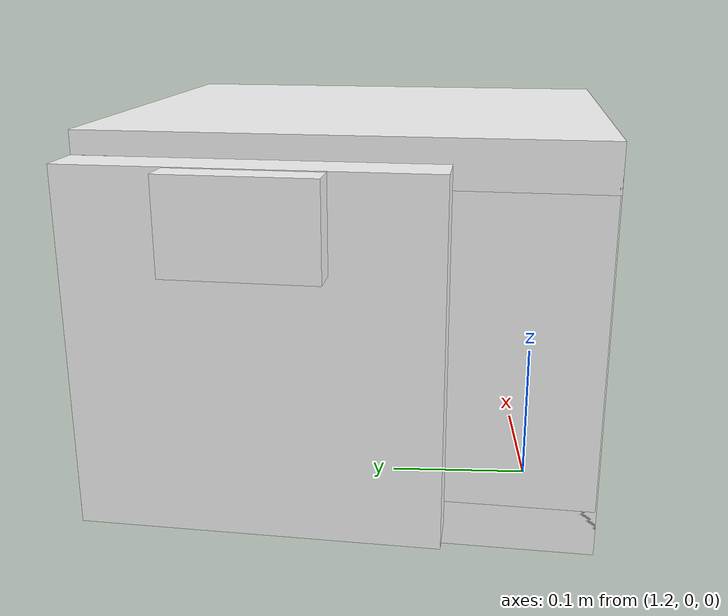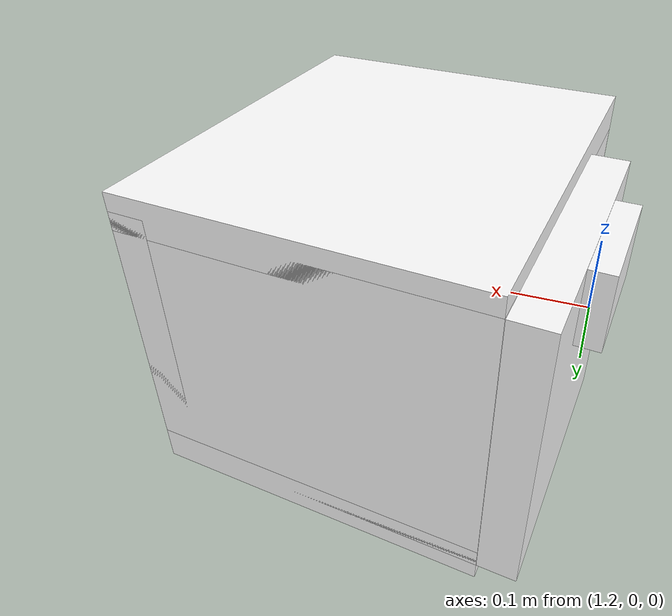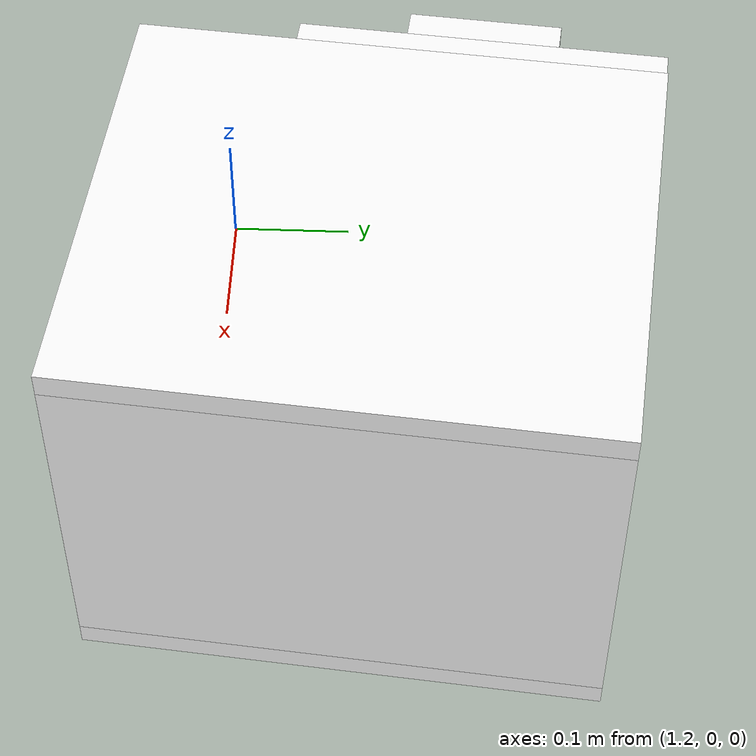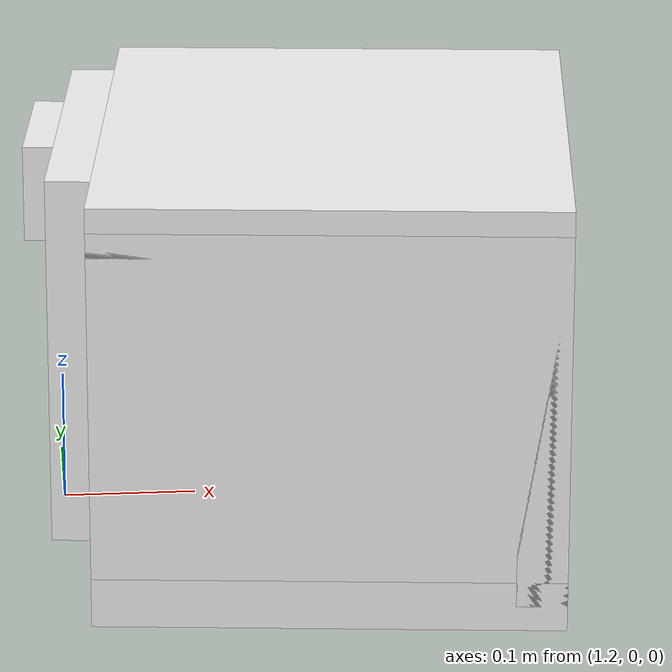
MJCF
<mujoco model="cabinet">
    <compiler angle="radian" eulerseq='zxy' />
    <option gravity = "0 0 0" />
    <option>
        <flag contact = "disable"/>
    </option>
    <statistic	extent="1.0" center="0.0 0.0 0.0"/>
    <visual>
        <map fogstart="3" fogend="5" force="0.1" znear=" 0.100000 " zfar=" 12.000000 "/>
    </visual>
    <size njmax="500" nconmax="100" />
    <actuator>
        <velocity joint="bottom_left_hinge" name="viva_revolution" kv='10'></velocity>
    </actuator>
    <asset>
        <texture builtin="flat" name="tabletex" height="32" width="32" rgb1="1 1 1" type="cube"></texture>
        <texture builtin="flat" name="objtex" height="32" width="32" rgb1="1 1 1" type="cube"></texture>
        <texture builtin="flat" name="handletex" height="32" width="32" rgb1="1 1 1" type="cube"></texture>
        <texture builtin="flat" name="wallpaper" height="32" width="32" rgb1="1 1 1" type="cube"></texture>
        <texture builtin="flat" name="kp" height="32" width="32" rgb1="1 1 1" type="cube"></texture>
        <material name="geomTable" shininess="0.03" specular="0.75" texture="tabletex"></material>
        <material name="geomObj" shininess="0.03" specular="0.75" texture="objtex"></material>
        <material name="geomHandle" shininess="0.03" specular="0.75" texture="handletex"></material>
        <material name="bg" shininess="0.03" specular="0.75" texture="wallpaper"></material>
        <material name="geomKeypad" shininess="0.03" specular="0.75" texture="kp"></material>
    </asset>
    <worldbody>
        <body name="cabinet_bottom" pos= " 1.418728 0.127513 -0.064048 "  quat= " 0.049631 0.000000 0.000000 0.998768" >
            <inertial pos="0 0 0" mass="1" diaginertia="1 1 1" />
            <geom size= " 0.182006 0.209483 0.019615 "  type="box" material="geomObj" name="b"/>
            <body name="cabinet_left" pos= " 0.000000 -0.189868 0.149273 " >
                <inertial pos="0 0 0" mass="1" diaginertia="1 1 1" />
                <geom size= " 0.182006 0.019615 0.149273 "  type="box" material="geomObj" name="c" />
            </body>
            <body name="cabinet_right" pos= " 0.000000 0.189868 0.149273 " >
                <inertial pos="0 0 0" mass="1" diaginertia="1 1 1" />
                <geom size= " 0.182006 0.019615 0.149273 "  type="box" material="geomObj" name="d" />
            </body>
            <body name="cabinet_top" pos= " 0.000000 0.000000 0.298547 " >
                <inertial pos="0 0 0" mass="1" diaginertia="1 1 1" />
                <geom size= " 0.182006 0.209483 0.019615 "  type="box" material="geomObj" name="e"/>
            </body>
            <body name="cabinet_back" pos= " -0.162392 0.000000 0.149273 "  >
                <inertial pos="0 0 0" mass="1" diaginertia="1 1 1" />
                <geom size= " 0.019615 0.209483 0.149273 "  type="box" material="geomObj" name="f" />
            </body>
            <body name="cabinet_keypad" pos= " 0.019615 0.147257 0.149273 " >
                <inertial pos="0 0 0" mass="1" diaginertia="1 1 1" />
                <geom size= " 0.162392 0.061226 0.129659 "  type="box" material="geomKeypad" name="keypizzlemynizzle" />
            </body>
            <body name="cabinet_left_hinge" pos= " 0.182006 -0.061226 0.000000 " >
                <inertial pos= " 0.020000 0.000000 0.149273 "  mass="1" diaginertia="1 1 1" />
                <joint name="bottom_left_hinge" type="hinge" pos="0 0 0" axis="0 1 0" limited="true" range= "0 2.3"  />
                <geom size= " 0.019615 0.148257 0.149273 "  pos= " 0.020000 0.000000 0.149273 "  type="box" material="geomObj" name="g"/>
                <body name="handle_link" pos= " 0.045502 0.000000 0.259318 " >
                    <inertial pos="0 0 0" mass="1" diaginertia="1 1 1" />
                    <geom size= " 0.018239 0.061226 0.038582 "  type="box" material="geomHandle" name="h"/>
                </body>
            </body>
        </body>
        <body name="external_camera_body_0" pos="0.0 0 0.00">
            <camera euler="-1.57 1.57 0.0" fovy=" 54.280851 " name="external_camera_0" pos="0.0 0 0"></camera>
            <inertial pos= " 0.00 0.0 0.000000 " mass="1" diaginertia="1 1 1" />
            <joint name="cam_j" pos="0.0 0 0" axis = "1 0 0" type="free" />
        </body>
    </worldbody>
</mujoco>
